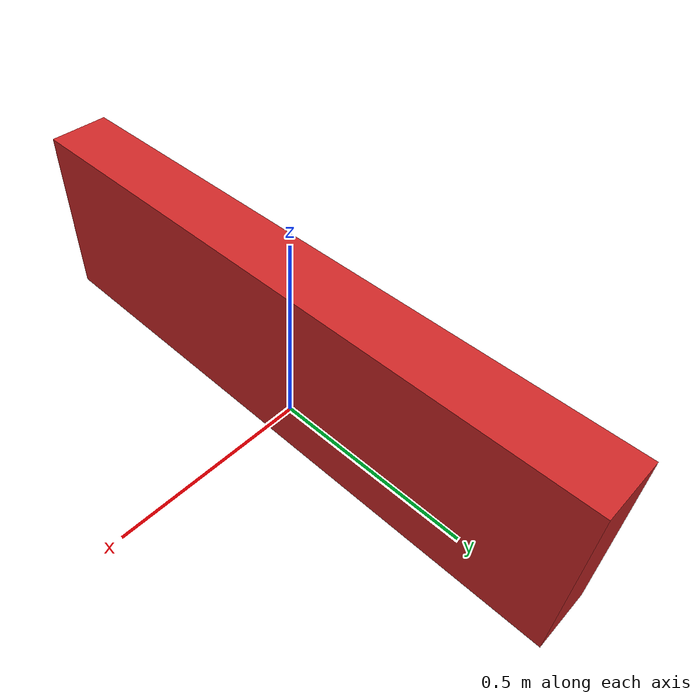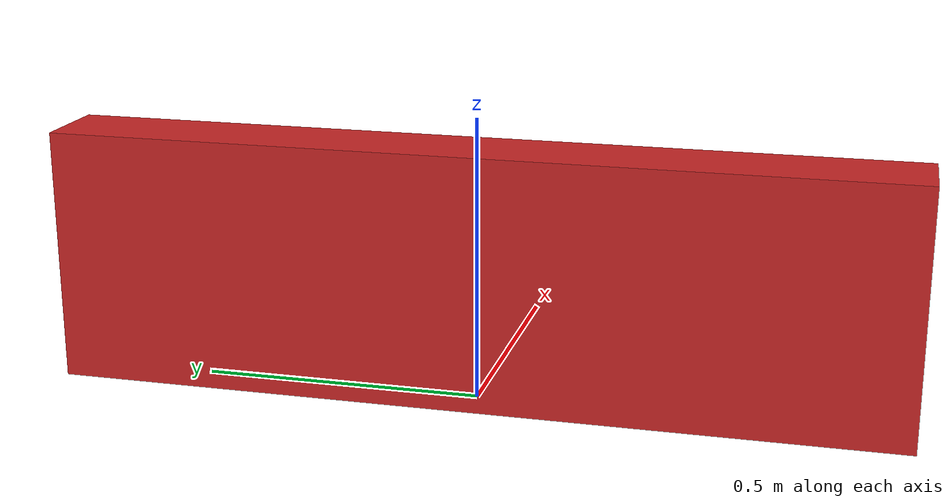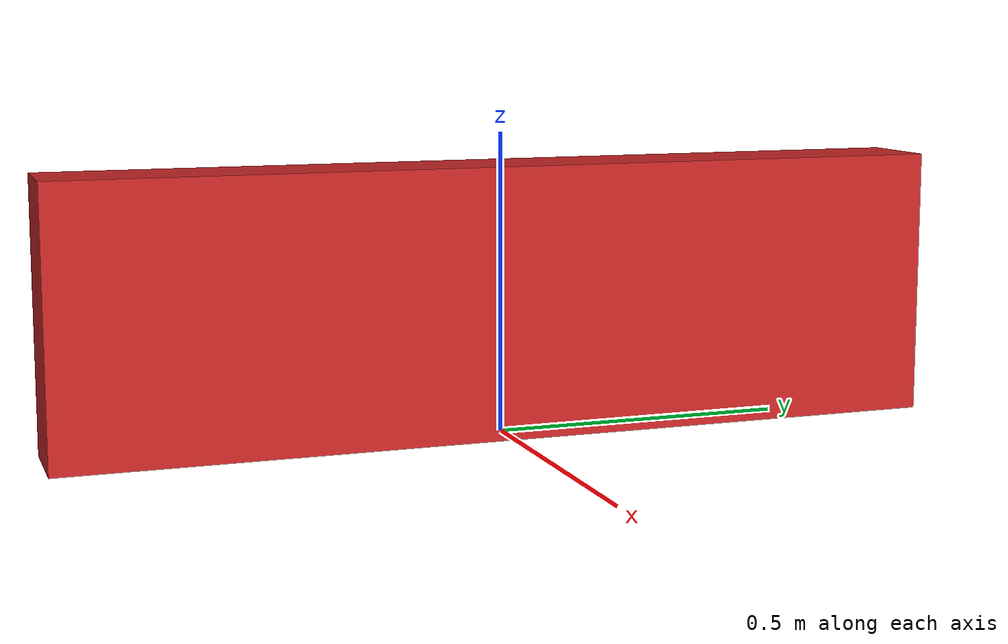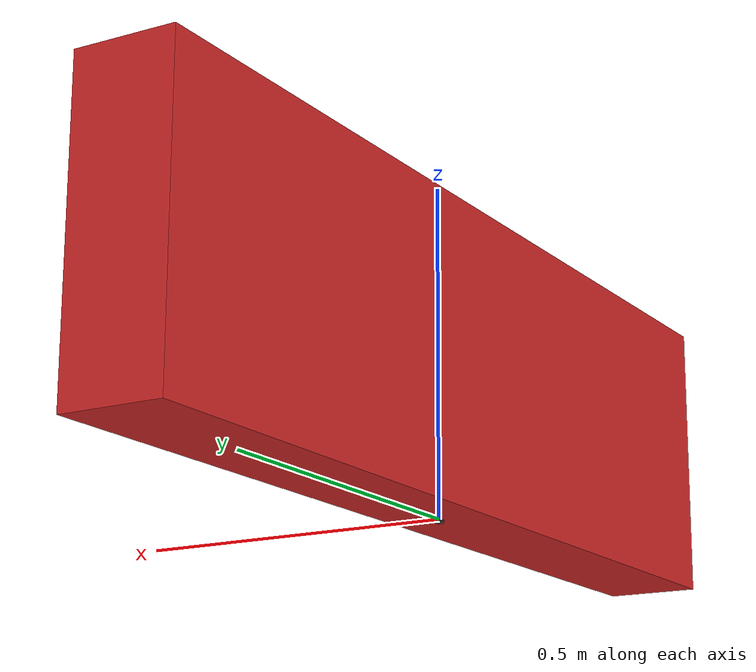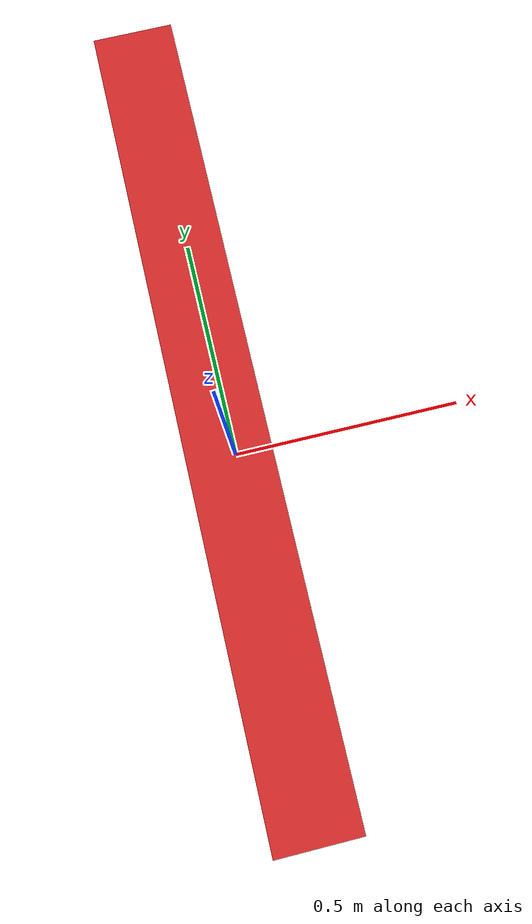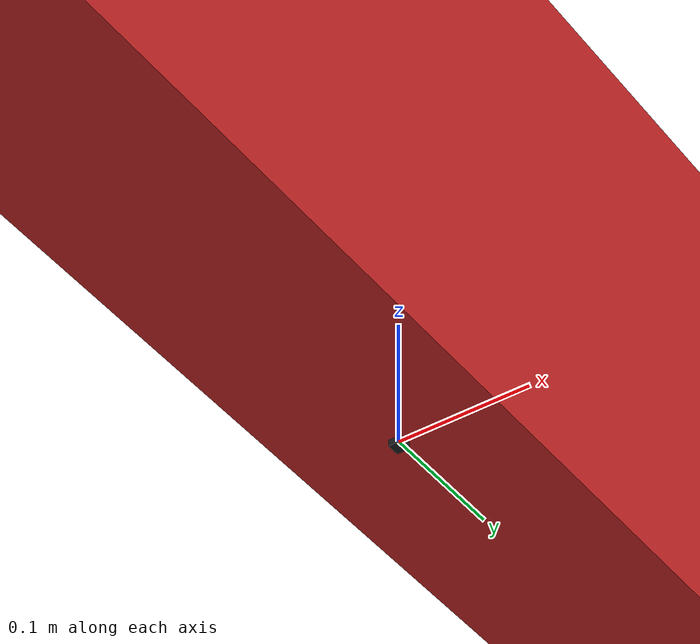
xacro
<?xml version="1.0"?>
<robot name="box" xmlns:xacro="http://ros.org/wiki/xacro">
  <!-- Gazebo plugin for ROS Control -->
  <gazebo>
    <plugin name="gazebo_ros_control" filename="libgazebo_ros_control.so">
      <robotNamespace>/quadruped</robotNamespace>
    </plugin>
  </gazebo>

  <xacro:property name="scaling_factor" value="1" />
  <!--height:z width:y width:x -->
  <xacro:property name="box_width" value="${0.15}" />
  <xacro:property name="box_height" value="${0.45}" />
  <xacro:property name="box_length" value="${1.5}" />
  <xacro:property name="box_mass" value="${1000}" />

  <!-- Inertia -->
  <xacro:macro name="box_inertial" params="mass width depth">
    <inertial>
      <mass value="${mass}" />
      <inertia ixx="${mass*(width*width+depth*depth)/12.0}" ixy="0.0" ixz="0.0" iyy="${mass*(width*width+depth*depth)/12.0}" iyz="0.0" izz="${mass*(width*width+depth*depth)/12.0}" />
    </inertial>
  </xacro:macro>

  <xacro:macro name="sphere_inertial" params="mass radius">
    <inertial>
      <mass value="${mass}" />
      <inertia ixx="0.1" ixy="0.0" ixz="0.0" iyy="0.1" iyz="0.0" izz="0.1"/>
    </inertial>
  </xacro:macro>

  <link name="dummy_link">
    <visual>
      <geometry>
        <box size="0.01 0.01 0.01"/>
      </geometry>
      <material name="black"/>
    </visual>
    <inertial>
      <mass value="0.01" />
      <inertia ixx="0.00001" ixy="0.0" ixz="0.0" iyy="0.00001" iyz="0.0" izz="0.00001" />
    </inertial>
    <gazebo reference="dummy_link">
    </gazebo>
  </link>

  <link name="base_link">
    <visual>
      <geometry>
        <box size="${box_width} ${box_length} ${box_height}"/>
      </geometry>
      <material name="red"/>
    </visual>
    <collision>
      <geometry>
        <box size="${box_width} ${box_length} ${box_height}"/>
      </geometry>
    </collision>
    <xacro:box_inertial mass="${box_mass}" width="${box_length}" depth="${box_length}"/>
  </link>
  <joint name="dummy_base_joint" type="fixed">
    <parent link="dummy_link"/>
    <child link="base_link"/>
    <origin xyz="0 0 ${0.5*box_height}" rpy="0 0 0"/>
  </joint>
  <gazebo reference="base_link">
    <mu1>100000.0</mu1>
    <mu2>100000.0</mu2>
    <material>Gazebo/Red</material>
  </gazebo>
  <gazebo reference="dummy_base_joint">
    <provideFeedback>true</provideFeedback>
    <disableFixedJointLumping>true</disableFixedJointLumping>
    <material>Gazebo/Red</material>
  </gazebo>

</robot>
